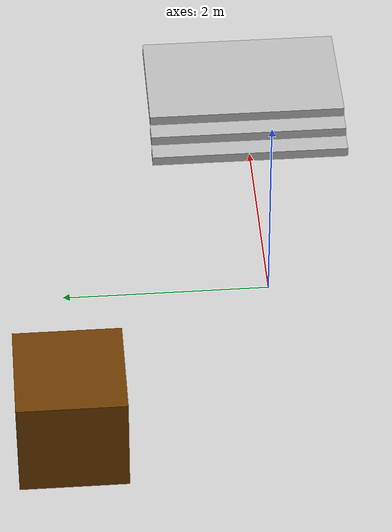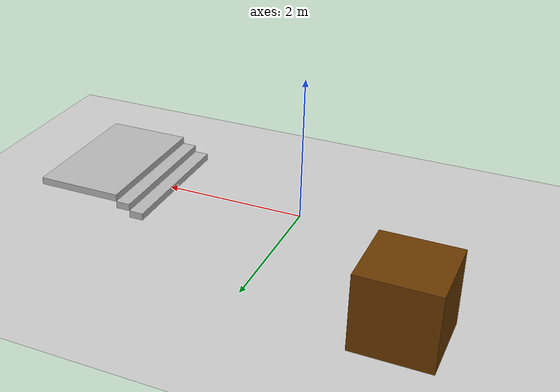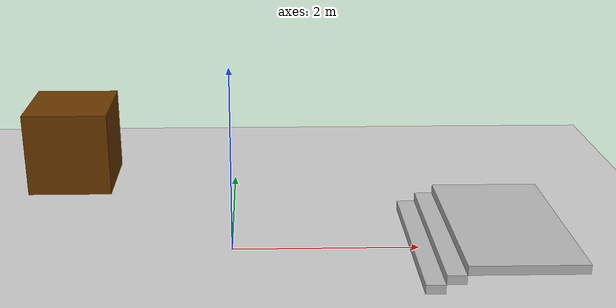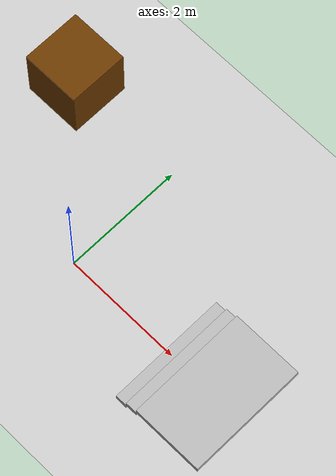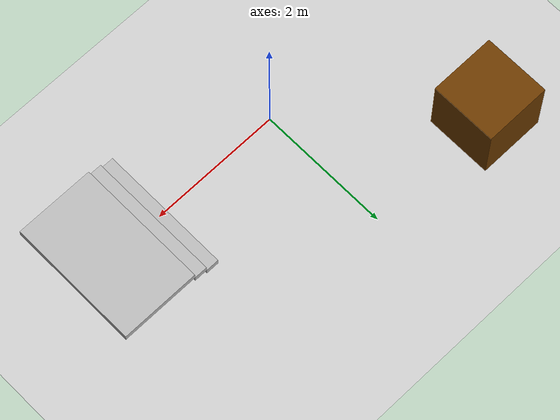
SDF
<?xml version="1.0" ?>
<sdf version="1.5">
    <world name="default">

        <physics type="ode">
        <max_step_size>0.0002</max_step_size>
        <real_time_factor>1</real_time_factor>
        <real_time_update_rate>5000</real_time_update_rate>
        <gravity>0 0 -9.81</gravity>
            <ode>
                <solver>
                <type>quick</type>
                <iters>100</iters>
                <sor>1.3</sor>
                </solver>
                <constraints>
                <cfm>0.0</cfm>
                <erp>0.2</erp>
                <contact_max_correcting_vel>10.0</contact_max_correcting_vel>
                <contact_surface_layer>0.001</contact_surface_layer>
                </constraints>
            </ode>
        </physics>

        <scene>
        <sky>
            <clouds>
                <speed>12</speed>
            </clouds>
        </sky>
        </scene>
        <!-- A global light source -->
        <include>
            <uri>model://sun</uri>
        </include>
        <!-- A ground plane -->
        <include>
            <uri>model://ground_plane</uri>
        </include>
        <!-- Stairs 501 -->
        <include>
            <uri>model://stairs501</uri>
            <pose>1 0 0 0 0 0</pose>
        </include>
        <!-- environment blocks, obstacles or stairs -->
        <model name="static_environment">
        <static>true</static>
            <link name="static_box">
                <pose>-2 2 0.5 0 0 0</pose>
                <collision name="static_box_collision">
                    <geometry>
                        <box>
                            <size>1 1 1</size>
                        </box>
                    </geometry>
                </collision>
                <visual name="static_box_visual">
                    <geometry>
                        <box>
                            <size>1 1 1</size>
                        </box>
                    </geometry>
                    <material>
                        <ambient>0.2 0.2 0.2 1.0</ambient>
                        <diffuse>.421 0.225 0.0 1.0</diffuse>
                    </material>
                </visual>
            </link>
        </model>

    </world>
</sdf>

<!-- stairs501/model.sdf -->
<sdf version='1.7'>
  <model name='stairs'>
    <link name='step_1'>
      <inertial>
        <pose>0 0 0 0 -0 0</pose>
        <mass>3</mass>
        <inertia>
          <ixx>0</ixx>
          <ixy>0</ixy>
          <ixz>0</ixz>
          <iyy>0</iyy>
          <iyz>0</iyz>
          <izz>0</izz>
        </inertia>
      </inertial>
      <collision name='step_1_collision'>
        <pose>1 0 0.05 0 -0 0</pose>
        <geometry>
          <box>
            <size>0.2 2 0.1</size>
          </box>
        </geometry>
        <surface>
          <contact>
            <ode/>
          </contact>
          <friction>
            <ode>
              <mu>1</mu>
              <mu2>1</mu2>
            </ode>
          </friction>
        </surface>
      </collision>
      <collision name='step_1_fixed_joint_lump__step_2_collision_1'>
        <pose>1.2 0 0.15 0 -0 0</pose>
        <geometry>
          <box>
            <size>0.2 2 0.1</size>
          </box>
        </geometry>
        <surface>
          <contact>
            <ode/>
          </contact>
          <friction>
            <ode>
              <mu>1</mu>
              <mu2>1</mu2>
            </ode>
          </friction>
        </surface>
      </collision>
      <collision name='step_1_fixed_joint_lump__step_3_collision_2'>
        <pose>1.9 0 0.25 0 -0 0</pose>
        <geometry>
          <box>
            <size>1.2 2 0.1</size>
          </box>
        </geometry>
        <surface>
          <contact>
            <ode/>
          </contact>
          <friction>
            <ode>
              <mu>1</mu>
              <mu2>1</mu2>
            </ode>
          </friction>
        </surface>
      </collision>
      <visual name='step_1_visual'>
        <pose>1 0 0.05 0 -0 0</pose>
        <geometry>
          <box>
            <size>0.2 2 0.1</size>
          </box>
        </geometry>
      </visual>
      <visual name='step_1_fixed_joint_lump__step_2_visual_1'>
        <pose>1.2 0 0.15 0 -0 0</pose>
        <geometry>
          <box>
            <size>0.2 2 0.1</size>
          </box>
        </geometry>
      </visual>
      <visual name='step_1_fixed_joint_lump__step_3_visual_2'>
        <pose>1.9 0 0.25 0 -0 0</pose>
        <geometry>
          <box>
            <size>1.2 2 0.1</size>
          </box>
        </geometry>
      </visual>
    </link>
    <static>1</static>
  </model>
</sdf>
